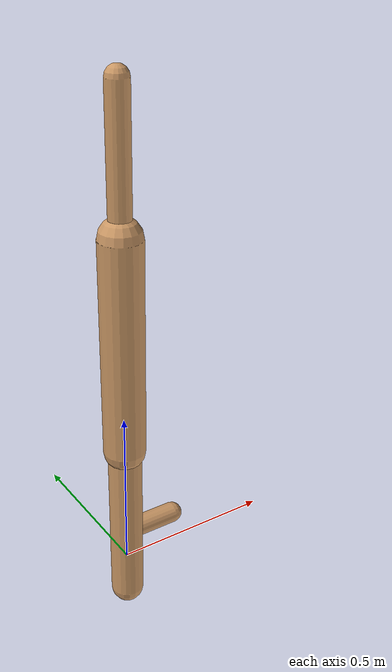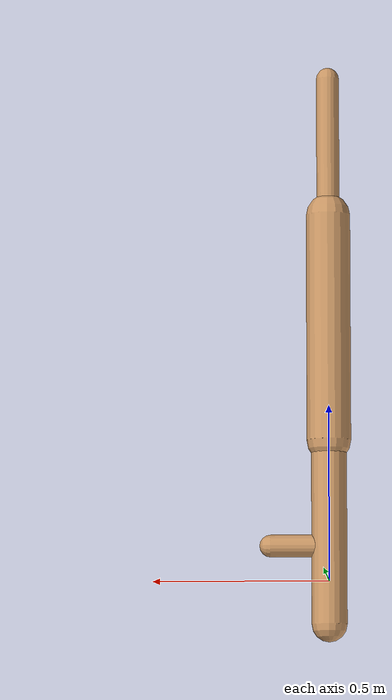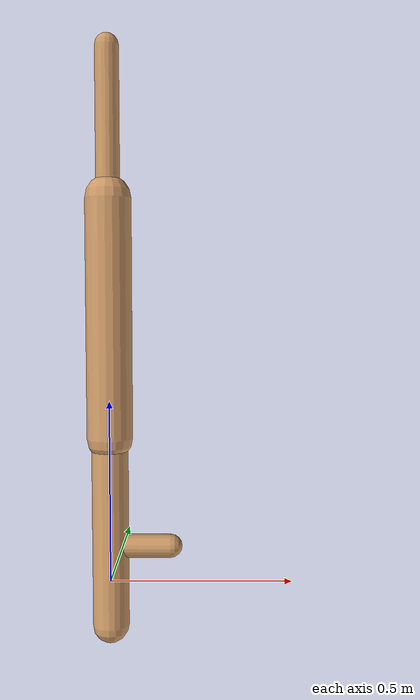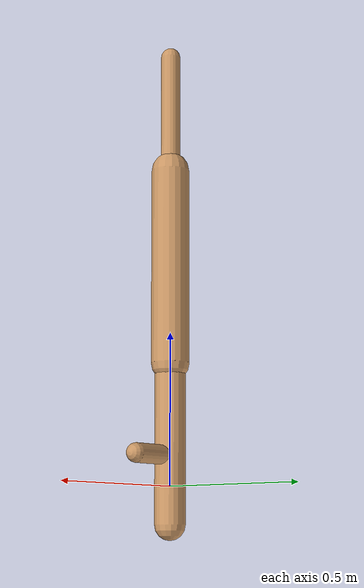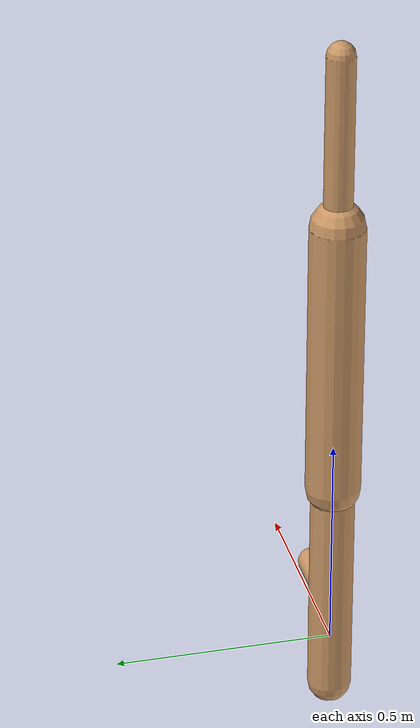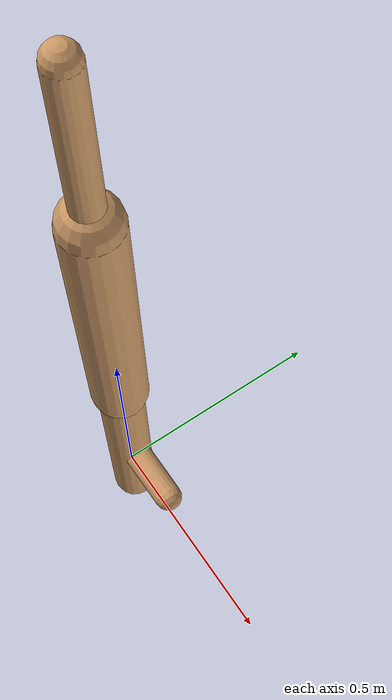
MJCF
<mujoco model="walker2d">
  <compiler angle="degree" coordinate="global" inertiafromgeom="true" />
  <default>
    <joint armature="0.01" damping=".1" limited="true" />
    <geom conaffinity="0" condim="3" contype="1" density="1000" friction="0.8 .1 .1" rgba="0.8 0.6 .4 1" />
  </default>
  <option integrator="RK4" timestep="0.002" />
  <worldbody>

    <body name="torso" pos="0 0 0.42146273035155873">
      <joint armature="0" axis="1 0 0" damping="0" limited="false" name="ignorex" pos="0 0 0" stiffness="0" type="slide" />
      <joint armature="0" axis="0 0 1" damping="0" limited="false" name="ignorez" pos="0 0 0" ref="1.25" stiffness="0" type="slide" />
      <joint armature="0" axis="0 1 0" damping="0" limited="false" name="ignorey" pos="0 0 0" stiffness="0" type="hinge" />
      <geom fromto="0 0 1.45 0 0 1.05" name="torso_geom" size="0.032516102076036314" type="capsule" />
      <body name="thigh">
        <joint axis="0 -1 0" name="thigh_joint" pos="0 0 1.05" range="-150 0" type="hinge" />
        <geom fromto="0.0 0.0 1.05 0.0 0.0 0.40035975930715634" name="thigh_geom" size="0.06285920917953758" type="capsule" />
        <body name="leg" pos="0.0 0.0 -0.19964024069284364">
          <joint axis="0 -1 0" name="leg_joint" pos="0 0 0.6" range="-150 0" type="hinge" />
          <geom fromto="0.0 0.0 0.6 0.0 0.0 -0.12182248965871512" name="leg_geom" size="0.05028736734363006" type="capsule" />
          <body name="foot" pos="0.0 0.0 -0.22182248965871512">
            <joint axis="0 -1 0" name="foot_joint" pos="0 0 0.1" range="-45 45" type="hinge" />
            <geom fromto="0.0 0.0 0.1 0.16586028911297712 0.0 0.1" name="foot_geom" size="0.0317857321781987" type="capsule" />
          </body>
        </body>
      </body>

      <body name="thigh_left">
        <joint axis="0 -1 0" name="thigh_left_joint" pos="0 0 1.05" range="-150 0" type="hinge" />
        <geom fromto="0.0 0.0 1.05 0.0 0.0 0.40035975930715634" name="thigh_left_geom" rgba=".7 .3 .6 1" size="0.06285920917953758" type="capsule" />
        <body name="leg_left" pos="0.0 0.0 -0.19964024069284364">
          <joint axis="0 -1 0" name="leg_left_joint" pos="0 0 0.6" range="-150 0" type="hinge" />
          <geom fromto="0.0 0.0 0.6 0.0 0.0 -0.12182248965871512" name="leg_left_geom" rgba=".7 .3 .6 1" size="0.05028736734363006" type="capsule" />
          <body name="foot_left" pos="0.0 0.0 -0.22182248965871512">
            <joint axis="0 -1 0" name="foot_left_joint" pos="0 0 0.1" range="-45 45" type="hinge" />
            <geom fromto="0.0 0.0 0.1 0.16586028911297712 0.0 0.1" name="foot_left_geom" rgba=".7 .3 .6 1" size="0.0317857321781987" type="capsule" />
          </body>
        </body>
      </body>
    </body>
  </worldbody>
  <actuator>

    <motor ctrllimited="true" ctrlrange="-1.0 1.0" gear="100" joint="thigh_joint" />
    <motor ctrllimited="true" ctrlrange="-1.0 1.0" gear="100" joint="leg_joint" />
    <motor ctrllimited="true" ctrlrange="-1.0 1.0" gear="100" joint="foot_joint" />
    <motor ctrllimited="true" ctrlrange="-1.0 1.0" gear="100" joint="thigh_left_joint" />
    <motor ctrllimited="true" ctrlrange="-1.0 1.0" gear="100" joint="leg_left_joint" />
    <motor ctrllimited="true" ctrlrange="-1.0 1.0" gear="100" joint="foot_left_joint" />

  </actuator>
</mujoco>
